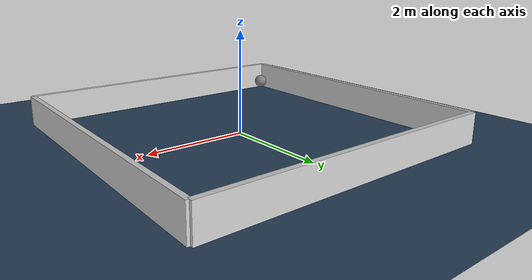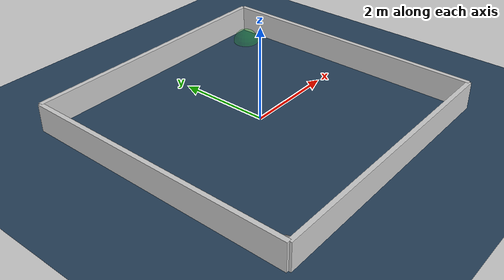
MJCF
<?xml version="1.0" ?>
<mujoco model="generated_environment">
  <option timestep="0.01" integrator="RK4" cone="elliptic"/>
  <default>
    <geom density="1"/>
  </default>
  <asset>
    <texture builtin="gradient" height="3072" rgb1="0.3 0.5 0.7" rgb2="0 0 0" type="skybox" width="512"/>
    <texture builtin="checker" height="300" mark="edge" markrgb="0.8 0.8 0.8" name="groundplane" rgb1="0.2 0.3 0.4" rgb2="0.1 0.2 0.3" type="2d" width="300"/>
    <material name="groundplane" reflectance="0.2" texrepeat="5 5" texture="groundplane" texuniform="true"/>
    <material name="robot" rgba="0.0 1.0 0.0 1"/>
  </asset>
  <worldbody>
    <light dir="0 0 -1" directional="true" pos="0 0 1.5"/>
    <geom condim="4" friction="0.5 0.005 0.001" material="groundplane" name="floor" size="0 0 0.05" type="plane"/>
    <body name="walls">
      <geom name="wall_1" condim="4" pos="-3 0 0.3" rgba="0.8 0.8 0.8 1" size="0.05 3 0.3" type="box"/>
      <geom name="wall_2" condim="4" pos="3 0 0.3" rgba="0.8 0.8 0.8 1" size="0.05 3 0.3" type="box"/>
      <geom name="wall_3" condim="4" pos="0 -3 0.3" rgba="0.8 0.8 0.8 1" size="3 0.05 0.3" type="box"/>
      <geom name="wall_4" condim="4" pos="0 3 0.3" rgba="0.8 0.8 0.8 1" size="3 0.05 0.3" type="box"/>
    </body>
    <body name="robot">
      <joint name="joint_x" type="slide" pos="0 0 0" axis="1 0 0"/>
      <joint name="joint_y" type="slide" pos="0 0 0" axis="0 1 0"/>
      <geom name="robot" type="sphere" pos="-2.75 -2.75 0.2" size="0.15" mass="5." friction="1.0 0.005 0.001" condim="4"/>
      <site name="sensor_ball"/>
    </body>

    <site name="goal" pos="2.5 2.5 0.0" rgba="0 1 0 0.2" size="0.3" type="sphere"/>

  </worldbody>
</mujoco>
